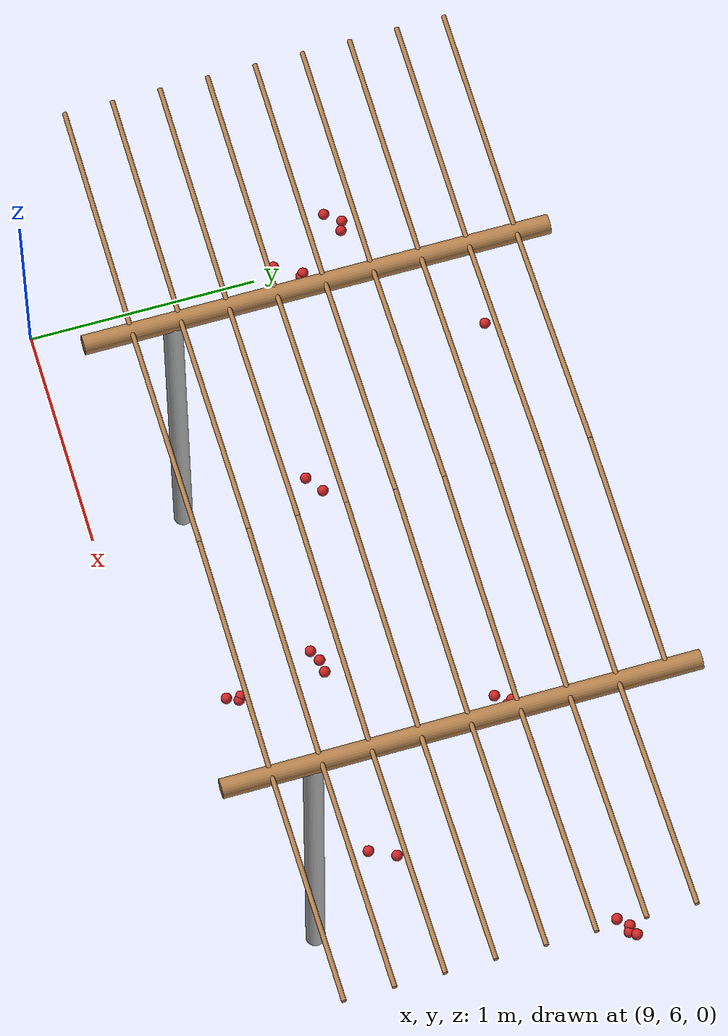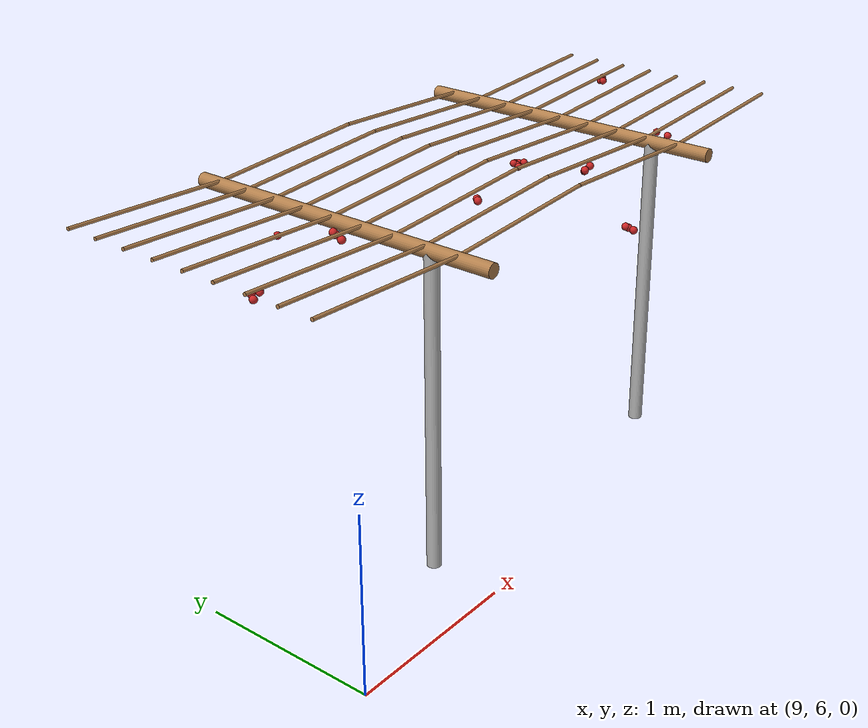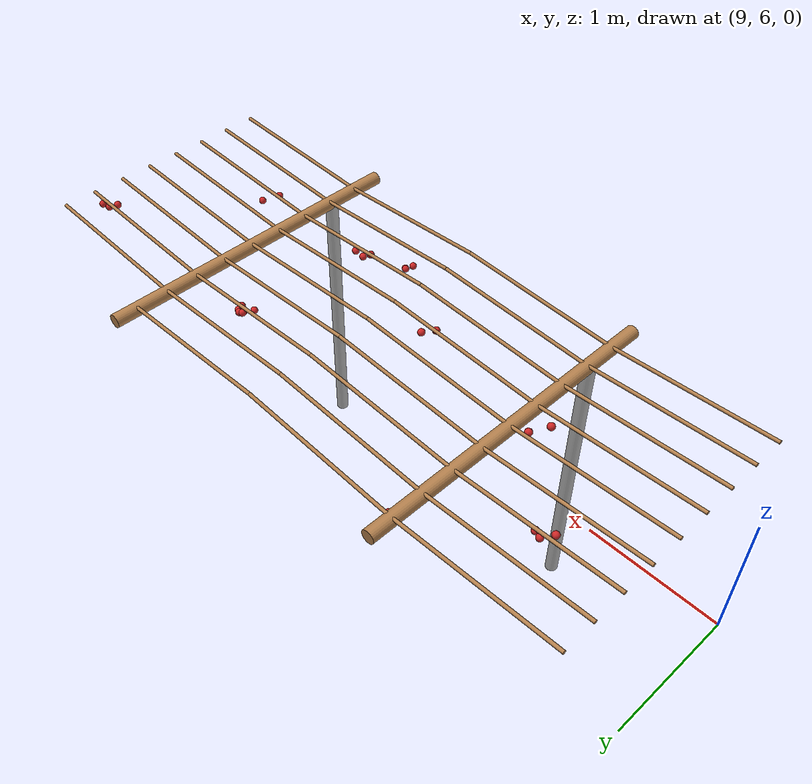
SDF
<sdf version="1.4">
 <model name="pergola">
  <include><name>tree_53</name><pose>10.0 6.4 0 0 0 0</pose><uri>model://tree_trunk</uri></include>
  <include><name>tree_63</name><pose>12.0 6.4 0 0 0 0</pose><uri>model://tree_trunk</uri></include>
  <link name="baseBranch_53">
   <pose>10.0 7.0 1.8 1.5707963267948966 0 0</pose>
   <collision name="collision">
    <geometry><cylinder><radius>0.04</radius><length>1.94</length></cylinder></geometry>
   </collision>
   <visual name="visual">
    <geometry><cylinder><radius>0.04</radius><length>1.94</length></cylinder></geometry>
    <material><script><name>Gazebo/WoodFloor</name></script></material>
   </visual>
   <inertial>
    <mass>10</mass>
    <inertia>
     <ixx>3.140333333333333</ixx>
     <ixy>0.0</ixy>
     <ixz>0.0</ixz>
     <iyy>3.140333333333333</iyy>
     <iyz>0.0</iyz>
     <izz>0.008</izz>
    </inertia>
   </inertial>
  </link>
  <link name="baseBranch_63">
   <pose>12.0 7.0 1.8 1.5707963267948966 0 0</pose>
   <collision name="collision">
    <geometry><cylinder><radius>0.04</radius><length>1.94</length></cylinder></geometry>
   </collision>
   <visual name="visual">
    <geometry><cylinder><radius>0.04</radius><length>1.94</length></cylinder></geometry>
    <material><script><name>Gazebo/WoodFloor</name></script></material>
   </visual>
   <inertial>
    <mass>10</mass>
    <inertia>
     <ixx>3.140333333333333</ixx>
     <ixy>0.0</ixy>
     <ixz>0.0</ixz>
     <iyy>3.140333333333333</iyy>
     <iyz>0.0</iyz>
     <izz>0.008</izz>
    </inertia>
   </inertial>
  </link>
  <link name="vine_863">
   <pose>9.5 6.23 1.85 0 -1.5208379310729538 0</pose>
   <collision name="collision">
    <geometry><cylinder><radius>0.01</radius><length>1.0012492197250393</length></cylinder></geometry>
   </collision>
   <visual name="visual">
    <geometry><cylinder><radius>0.01</radius><length>1.0012492197250393</length></cylinder></geometry>
    <material><script><name>Gazebo/WoodFloor</name></script></material>
   </visual>
   <inertial>
    <mass>5</mass>
    <inertia>
     <ixx>0.41783333333333345</ixx>
     <ixy>0.0</ixy>
     <ixz>0.0</ixz>
     <iyy>0.41783333333333345</iyy>
     <iyz>0.0</iyz>
     <izz>0.00025</izz>
    </inertia>
   </inertial>
  </link>
  <link name="vine_865">
   <pose>9.5 6.430000000000001 1.85 0 -1.5208379310729538 0</pose>
   <collision name="collision">
    <geometry><cylinder><radius>0.01</radius><length>1.0012492197250393</length></cylinder></geometry>
   </collision>
   <visual name="visual">
    <geometry><cylinder><radius>0.01</radius><length>1.0012492197250393</length></cylinder></geometry>
    <material><script><name>Gazebo/WoodFloor</name></script></material>
   </visual>
   <inertial>
    <mass>5</mass>
    <inertia>
     <ixx>0.41783333333333345</ixx>
     <ixy>0.0</ixy>
     <ixz>0.0</ixz>
     <iyy>0.41783333333333345</iyy>
     <iyz>0.0</iyz>
     <izz>0.00025</izz>
    </inertia>
   </inertial>
  </link>
  <link name="vine_867">
   <pose>9.5 6.630000000000001 1.85 0 -1.5208379310729538 0</pose>
   <collision name="collision">
    <geometry><cylinder><radius>0.01</radius><length>1.0012492197250393</length></cylinder></geometry>
   </collision>
   <visual name="visual">
    <geometry><cylinder><radius>0.01</radius><length>1.0012492197250393</length></cylinder></geometry>
    <material><script><name>Gazebo/WoodFloor</name></script></material>
   </visual>
   <inertial>
    <mass>5</mass>
    <inertia>
     <ixx>0.41783333333333345</ixx>
     <ixy>0.0</ixy>
     <ixz>0.0</ixz>
     <iyy>0.41783333333333345</iyy>
     <iyz>0.0</iyz>
     <izz>0.00025</izz>
    </inertia>
   </inertial>
  </link>
  <link name="vine_869">
   <pose>9.5 6.830000000000001 1.85 0 -1.5208379310729538 0</pose>
   <collision name="collision">
    <geometry><cylinder><radius>0.01</radius><length>1.0012492197250393</length></cylinder></geometry>
   </collision>
   <visual name="visual">
    <geometry><cylinder><radius>0.01</radius><length>1.0012492197250393</length></cylinder></geometry>
    <material><script><name>Gazebo/WoodFloor</name></script></material>
   </visual>
   <inertial>
    <mass>5</mass>
    <inertia>
     <ixx>0.41783333333333345</ixx>
     <ixy>0.0</ixy>
     <ixz>0.0</ixz>
     <iyy>0.41783333333333345</iyy>
     <iyz>0.0</iyz>
     <izz>0.00025</izz>
    </inertia>
   </inertial>
  </link>
  <link name="vine_871">
   <pose>9.5 7.03 1.85 0 -1.5208379310729538 0</pose>
   <collision name="collision">
    <geometry><cylinder><radius>0.01</radius><length>1.0012492197250393</length></cylinder></geometry>
   </collision>
   <visual name="visual">
    <geometry><cylinder><radius>0.01</radius><length>1.0012492197250393</length></cylinder></geometry>
    <material><script><name>Gazebo/WoodFloor</name></script></material>
   </visual>
   <inertial>
    <mass>5</mass>
    <inertia>
     <ixx>0.41783333333333345</ixx>
     <ixy>0.0</ixy>
     <ixz>0.0</ixz>
     <iyy>0.41783333333333345</iyy>
     <iyz>0.0</iyz>
     <izz>0.00025</izz>
    </inertia>
   </inertial>
  </link>
  <link name="vine_873">
   <pose>9.5 7.23 1.85 0 -1.5208379310729538 0</pose>
   <collision name="collision">
    <geometry><cylinder><radius>0.01</radius><length>1.0012492197250393</length></cylinder></geometry>
   </collision>
   <visual name="visual">
    <geometry><cylinder><radius>0.01</radius><length>1.0012492197250393</length></cylinder></geometry>
    <material><script><name>Gazebo/WoodFloor</name></script></material>
   </visual>
   <inertial>
    <mass>5</mass>
    <inertia>
     <ixx>0.41783333333333345</ixx>
     <ixy>0.0</ixy>
     <ixz>0.0</ixz>
     <iyy>0.41783333333333345</iyy>
     <iyz>0.0</iyz>
     <izz>0.00025</izz>
    </inertia>
   </inertial>
  </link>
  <link name="vine_875">
   <pose>9.5 7.430000000000001 1.85 0 -1.5208379310729538 0</pose>
   <collision name="collision">
    <geometry><cylinder><radius>0.01</radius><length>1.0012492197250393</length></cylinder></geometry>
   </collision>
   <visual name="visual">
    <geometry><cylinder><radius>0.01</radius><length>1.0012492197250393</length></cylinder></geometry>
    <material><script><name>Gazebo/WoodFloor</name></script></material>
   </visual>
   <inertial>
    <mass>5</mass>
    <inertia>
     <ixx>0.41783333333333345</ixx>
     <ixy>0.0</ixy>
     <ixz>0.0</ixz>
     <iyy>0.41783333333333345</iyy>
     <iyz>0.0</iyz>
     <izz>0.00025</izz>
    </inertia>
   </inertial>
  </link>
  <link name="vine_877">
   <pose>9.5 7.630000000000001 1.85 0 -1.5208379310729538 0</pose>
   <collision name="collision">
    <geometry><cylinder><radius>0.01</radius><length>1.0012492197250393</length></cylinder></geometry>
   </collision>
   <visual name="visual">
    <geometry><cylinder><radius>0.01</radius><length>1.0012492197250393</length></cylinder></geometry>
    <material><script><name>Gazebo/WoodFloor</name></script></material>
   </visual>
   <inertial>
    <mass>5</mass>
    <inertia>
     <ixx>0.41783333333333345</ixx>
     <ixy>0.0</ixy>
     <ixz>0.0</ixz>
     <iyy>0.41783333333333345</iyy>
     <iyz>0.0</iyz>
     <izz>0.00025</izz>
    </inertia>
   </inertial>
  </link>
  <link name="vine_879">
   <pose>9.5 7.830000000000001 1.85 0 -1.5208379310729538 0</pose>
   <collision name="collision">
    <geometry><cylinder><radius>0.01</radius><length>1.0012492197250393</length></cylinder></geometry>
   </collision>
   <visual name="visual">
    <geometry><cylinder><radius>0.01</radius><length>1.0012492197250393</length></cylinder></geometry>
    <material><script><name>Gazebo/WoodFloor</name></script></material>
   </visual>
   <inertial>
    <mass>5</mass>
    <inertia>
     <ixx>0.41783333333333345</ixx>
     <ixy>0.0</ixy>
     <ixz>0.0</ixz>
     <iyy>0.41783333333333345</iyy>
     <iyz>0.0</iyz>
     <izz>0.00025</izz>
    </inertia>
   </inertial>
  </link>
  <link name="vine_1062">
   <pose>10.5 6.23 1.85 0 1.5208379310729538 0</pose>
   <collision name="collision">
    <geometry><cylinder><radius>0.01</radius><length>1.0012492197250393</length></cylinder></geometry>
   </collision>
   <visual name="visual">
    <geometry><cylinder><radius>0.01</radius><length>1.0012492197250393</length></cylinder></geometry>
    <material><script><name>Gazebo/WoodFloor</name></script></material>
   </visual>
   <inertial>
    <mass>5</mass>
    <inertia>
     <ixx>0.41783333333333345</ixx>
     <ixy>0.0</ixy>
     <ixz>0.0</ixz>
     <iyy>0.41783333333333345</iyy>
     <iyz>0.0</iyz>
     <izz>0.00025</izz>
    </inertia>
   </inertial>
  </link>
  <link name="vine_1063">
   <pose>11.5 6.23 1.85 0 -1.5208379310729538 0</pose>
   <collision name="collision">
    <geometry><cylinder><radius>0.01</radius><length>1.0012492197250393</length></cylinder></geometry>
   </collision>
   <visual name="visual">
    <geometry><cylinder><radius>0.01</radius><length>1.0012492197250393</length></cylinder></geometry>
    <material><script><name>Gazebo/WoodFloor</name></script></material>
   </visual>
   <inertial>
    <mass>5</mass>
    <inertia>
     <ixx>0.41783333333333345</ixx>
     <ixy>0.0</ixy>
     <ixz>0.0</ixz>
     <iyy>0.41783333333333345</iyy>
     <iyz>0.0</iyz>
     <izz>0.00025</izz>
    </inertia>
   </inertial>
  </link>
  <link name="vine_1064">
   <pose>10.5 6.430000000000001 1.85 0 1.5208379310729538 0</pose>
   <collision name="collision">
    <geometry><cylinder><radius>0.01</radius><length>1.0012492197250393</length></cylinder></geometry>
   </collision>
   <visual name="visual">
    <geometry><cylinder><radius>0.01</radius><length>1.0012492197250393</length></cylinder></geometry>
    <material><script><name>Gazebo/WoodFloor</name></script></material>
   </visual>
   <inertial>
    <mass>5</mass>
    <inertia>
     <ixx>0.41783333333333345</ixx>
     <ixy>0.0</ixy>
     <ixz>0.0</ixz>
     <iyy>0.41783333333333345</iyy>
     <iyz>0.0</iyz>
     <izz>0.00025</izz>
    </inertia>
   </inertial>
  </link>
  <link name="vine_1065">
   <pose>11.5 6.430000000000001 1.85 0 -1.5208379310729538 0</pose>
   <collision name="collision">
    <geometry><cylinder><radius>0.01</radius><length>1.0012492197250393</length></cylinder></geometry>
   </collision>
   <visual name="visual">
    <geometry><cylinder><radius>0.01</radius><length>1.0012492197250393</length></cylinder></geometry>
    <material><script><name>Gazebo/WoodFloor</name></script></material>
   </visual>
   <inertial>
    <mass>5</mass>
    <inertia>
     <ixx>0.41783333333333345</ixx>
     <ixy>0.0</ixy>
     <ixz>0.0</ixz>
     <iyy>0.41783333333333345</iyy>
     <iyz>0.0</iyz>
     <izz>0.00025</izz>
    </inertia>
   </inertial>
  </link>
  <link name="vine_1066">
   <pose>10.5 6.630000000000001 1.85 0 1.5208379310729538 0</pose>
   <collision name="collision">
    <geometry><cylinder><radius>0.01</radius><length>1.0012492197250393</length></cylinder></geometry>
   </collision>
   <visual name="visual">
    <geometry><cylinder><radius>0.01</radius><length>1.0012492197250393</length></cylinder></geometry>
    <material><script><name>Gazebo/WoodFloor</name></script></material>
   </visual>
   <inertial>
    <mass>5</mass>
    <inertia>
     <ixx>0.41783333333333345</ixx>
     <ixy>0.0</ixy>
     <ixz>0.0</ixz>
     <iyy>0.41783333333333345</iyy>
     <iyz>0.0</iyz>
     <izz>0.00025</izz>
    </inertia>
   </inertial>
  </link>
  <link name="vine_1067">
   <pose>11.5 6.630000000000001 1.85 0 -1.5208379310729538 0</pose>
   <collision name="collision">
    <geometry><cylinder><radius>0.01</radius><length>1.0012492197250393</length></cylinder></geometry>
   </collision>
   <visual name="visual">
    <geometry><cylinder><radius>0.01</radius><length>1.0012492197250393</length></cylinder></geometry>
    <material><script><name>Gazebo/WoodFloor</name></script></material>
   </visual>
   <inertial>
    <mass>5</mass>
    <inertia>
     <ixx>0.41783333333333345</ixx>
     <ixy>0.0</ixy>
     <ixz>0.0</ixz>
     <iyy>0.41783333333333345</iyy>
     <iyz>0.0</iyz>
     <izz>0.00025</izz>
    </inertia>
   </inertial>
  </link>
  <link name="vine_1068">
   <pose>10.5 6.830000000000001 1.85 0 1.5208379310729538 0</pose>
   <collision name="collision">
    <geometry><cylinder><radius>0.01</radius><length>1.0012492197250393</length></cylinder></geometry>
   </collision>
   <visual name="visual">
    <geometry><cylinder><radius>0.01</radius><length>1.0012492197250393</length></cylinder></geometry>
    <material><script><name>Gazebo/WoodFloor</name></script></material>
   </visual>
   <inertial>
    <mass>5</mass>
    <inertia>
     <ixx>0.41783333333333345</ixx>
     <ixy>0.0</ixy>
     <ixz>0.0</ixz>
     <iyy>0.41783333333333345</iyy>
     <iyz>0.0</iyz>
     <izz>0.00025</izz>
    </inertia>
   </inertial>
  </link>
  <link name="vine_1069">
   <pose>11.5 6.830000000000001 1.85 0 -1.5208379310729538 0</pose>
   <collision name="collision">
    <geometry><cylinder><radius>0.01</radius><length>1.0012492197250393</length></cylinder></geometry>
   </collision>
   <visual name="visual">
    <geometry><cylinder><radius>0.01</radius><length>1.0012492197250393</length></cylinder></geometry>
    <material><script><name>Gazebo/WoodFloor</name></script></material>
   </visual>
   <inertial>
    <mass>5</mass>
    <inertia>
     <ixx>0.41783333333333345</ixx>
     <ixy>0.0</ixy>
     <ixz>0.0</ixz>
     <iyy>0.41783333333333345</iyy>
     <iyz>0.0</iyz>
     <izz>0.00025</izz>
    </inertia>
   </inertial>
  </link>
  <link name="vine_1070">
   <pose>10.5 7.03 1.85 0 1.5208379310729538 0</pose>
   <collision name="collision">
    <geometry><cylinder><radius>0.01</radius><length>1.0012492197250393</length></cylinder></geometry>
   </collision>
   <visual name="visual">
    <geometry><cylinder><radius>0.01</radius><length>1.0012492197250393</length></cylinder></geometry>
    <material><script><name>Gazebo/WoodFloor</name></script></material>
   </visual>
   <inertial>
    <mass>5</mass>
    <inertia>
     <ixx>0.41783333333333345</ixx>
     <ixy>0.0</ixy>
     <ixz>0.0</ixz>
     <iyy>0.41783333333333345</iyy>
     <iyz>0.0</iyz>
     <izz>0.00025</izz>
    </inertia>
   </inertial>
  </link>
  <link name="vine_1071">
   <pose>11.5 7.03 1.85 0 -1.5208379310729538 0</pose>
   <collision name="collision">
    <geometry><cylinder><radius>0.01</radius><length>1.0012492197250393</length></cylinder></geometry>
   </collision>
   <visual name="visual">
    <geometry><cylinder><radius>0.01</radius><length>1.0012492197250393</length></cylinder></geometry>
    <material><script><name>Gazebo/WoodFloor</name></script></material>
   </visual>
   <inertial>
    <mass>5</mass>
    <inertia>
     <ixx>0.41783333333333345</ixx>
     <ixy>0.0</ixy>
     <ixz>0.0</ixz>
     <iyy>0.41783333333333345</iyy>
     <iyz>0.0</iyz>
     <izz>0.00025</izz>
    </inertia>
   </inertial>
  </link>
  <link name="vine_1072">
   <pose>10.5 7.23 1.85 0 1.5208379310729538 0</pose>
   <collision name="collision">
    <geometry><cylinder><radius>0.01</radius><length>1.0012492197250393</length></cylinder></geometry>
   </collision>
   <visual name="visual">
    <geometry><cylinder><radius>0.01</radius><length>1.0012492197250393</length></cylinder></geometry>
    <material><script><name>Gazebo/WoodFloor</name></script></material>
   </visual>
   <inertial>
    <mass>5</mass>
    <inertia>
     <ixx>0.41783333333333345</ixx>
     <ixy>0.0</ixy>
     <ixz>0.0</ixz>
     <iyy>0.41783333333333345</iyy>
     <iyz>0.0</iyz>
     <izz>0.00025</izz>
    </inertia>
   </inertial>
  </link>
  <link name="vine_1073">
   <pose>11.5 7.23 1.85 0 -1.5208379310729538 0</pose>
   <collision name="collision">
    <geometry><cylinder><radius>0.01</radius><length>1.0012492197250393</length></cylinder></geometry>
   </collision>
   <visual name="visual">
    <geometry><cylinder><radius>0.01</radius><length>1.0012492197250393</length></cylinder></geometry>
    <material><script><name>Gazebo/WoodFloor</name></script></material>
   </visual>
   <inertial>
    <mass>5</mass>
    <inertia>
     <ixx>0.41783333333333345</ixx>
     <ixy>0.0</ixy>
     <ixz>0.0</ixz>
     <iyy>0.41783333333333345</iyy>
     <iyz>0.0</iyz>
     <izz>0.00025</izz>
    </inertia>
   </inertial>
  </link>
  <link name="vine_1074">
   <pose>10.5 7.430000000000001 1.85 0 1.5208379310729538 0</pose>
   <collision name="collision">
    <geometry><cylinder><radius>0.01</radius><length>1.0012492197250393</length></cylinder></geometry>
   </collision>
   <visual name="visual">
    <geometry><cylinder><radius>0.01</radius><length>1.0012492197250393</length></cylinder></geometry>
    <material><script><name>Gazebo/WoodFloor</name></script></material>
   </visual>
   <inertial>
    <mass>5</mass>
    <inertia>
     <ixx>0.41783333333333345</ixx>
     <ixy>0.0</ixy>
     <ixz>0.0</ixz>
     <iyy>0.41783333333333345</iyy>
     <iyz>0.0</iyz>
     <izz>0.00025</izz>
    </inertia>
   </inertial>
  </link>
  <link name="vine_1075">
   <pose>11.5 7.430000000000001 1.85 0 -1.5208379310729538 0</pose>
   <collision name="collision">
    <geometry><cylinder><radius>0.01</radius><length>1.0012492197250393</length></cylinder></geometry>
   </collision>
   <visual name="visual">
    <geometry><cylinder><radius>0.01</radius><length>1.0012492197250393</length></cylinder></geometry>
    <material><script><name>Gazebo/WoodFloor</name></script></material>
   </visual>
   <inertial>
    <mass>5</mass>
    <inertia>
     <ixx>0.41783333333333345</ixx>
     <ixy>0.0</ixy>
     <ixz>0.0</ixz>
     <iyy>0.41783333333333345</iyy>
     <iyz>0.0</iyz>
     <izz>0.00025</izz>
    </inertia>
   </inertial>
  </link>
  <link name="vine_1076">
   <pose>10.5 7.630000000000001 1.85 0 1.5208379310729538 0</pose>
   <collision name="collision">
    <geometry><cylinder><radius>0.01</radius><length>1.0012492197250393</length></cylinder></geometry>
   </collision>
   <visual name="visual">
    <geometry><cylinder><radius>0.01</radius><length>1.0012492197250393</length></cylinder></geometry>
    <material><script><name>Gazebo/WoodFloor</name></script></material>
   </visual>
   <inertial>
    <mass>5</mass>
    <inertia>
     <ixx>0.41783333333333345</ixx>
     <ixy>0.0</ixy>
     <ixz>0.0</ixz>
     <iyy>0.41783333333333345</iyy>
     <iyz>0.0</iyz>
     <izz>0.00025</izz>
    </inertia>
   </inertial>
  </link>
  <link name="vine_1077">
   <pose>11.5 7.630000000000001 1.85 0 -1.5208379310729538 0</pose>
   <collision name="collision">
    <geometry><cylinder><radius>0.01</radius><length>1.0012492197250393</length></cylinder></geometry>
   </collision>
   <visual name="visual">
    <geometry><cylinder><radius>0.01</radius><length>1.0012492197250393</length></cylinder></geometry>
    <material><script><name>Gazebo/WoodFloor</name></script></material>
   </visual>
   <inertial>
    <mass>5</mass>
    <inertia>
     <ixx>0.41783333333333345</ixx>
     <ixy>0.0</ixy>
     <ixz>0.0</ixz>
     <iyy>0.41783333333333345</iyy>
     <iyz>0.0</iyz>
     <izz>0.00025</izz>
    </inertia>
   </inertial>
  </link>
  <link name="vine_1078">
   <pose>10.5 7.830000000000001 1.85 0 1.5208379310729538 0</pose>
   <collision name="collision">
    <geometry><cylinder><radius>0.01</radius><length>1.0012492197250393</length></cylinder></geometry>
   </collision>
   <visual name="visual">
    <geometry><cylinder><radius>0.01</radius><length>1.0012492197250393</length></cylinder></geometry>
    <material><script><name>Gazebo/WoodFloor</name></script></material>
   </visual>
   <inertial>
    <mass>5</mass>
    <inertia>
     <ixx>0.41783333333333345</ixx>
     <ixy>0.0</ixy>
     <ixz>0.0</ixz>
     <iyy>0.41783333333333345</iyy>
     <iyz>0.0</iyz>
     <izz>0.00025</izz>
    </inertia>
   </inertial>
  </link>
  <link name="vine_1079">
   <pose>11.5 7.830000000000001 1.85 0 -1.5208379310729538 0</pose>
   <collision name="collision">
    <geometry><cylinder><radius>0.01</radius><length>1.0012492197250393</length></cylinder></geometry>
   </collision>
   <visual name="visual">
    <geometry><cylinder><radius>0.01</radius><length>1.0012492197250393</length></cylinder></geometry>
    <material><script><name>Gazebo/WoodFloor</name></script></material>
   </visual>
   <inertial>
    <mass>5</mass>
    <inertia>
     <ixx>0.41783333333333345</ixx>
     <ixy>0.0</ixy>
     <ixz>0.0</ixz>
     <iyy>0.41783333333333345</iyy>
     <iyz>0.0</iyz>
     <izz>0.00025</izz>
    </inertia>
   </inertial>
  </link>
  <link name="vine_1262">
   <pose>12.5 6.23 1.85 0 1.5208379310729538 0</pose>
   <collision name="collision">
    <geometry><cylinder><radius>0.01</radius><length>1.0012492197250393</length></cylinder></geometry>
   </collision>
   <visual name="visual">
    <geometry><cylinder><radius>0.01</radius><length>1.0012492197250393</length></cylinder></geometry>
    <material><script><name>Gazebo/WoodFloor</name></script></material>
   </visual>
   <inertial>
    <mass>5</mass>
    <inertia>
     <ixx>0.41783333333333345</ixx>
     <ixy>0.0</ixy>
     <ixz>0.0</ixz>
     <iyy>0.41783333333333345</iyy>
     <iyz>0.0</iyz>
     <izz>0.00025</izz>
    </inertia>
   </inertial>
  </link>
  <link name="vine_1264">
   <pose>12.5 6.430000000000001 1.85 0 1.5208379310729538 0</pose>
   <collision name="collision">
    <geometry><cylinder><radius>0.01</radius><length>1.0012492197250393</length></cylinder></geometry>
   </collision>
   <visual name="visual">
    <geometry><cylinder><radius>0.01</radius><length>1.0012492197250393</length></cylinder></geometry>
    <material><script><name>Gazebo/WoodFloor</name></script></material>
   </visual>
   <inertial>
    <mass>5</mass>
    <inertia>
     <ixx>0.41783333333333345</ixx>
     <ixy>0.0</ixy>
     <ixz>0.0</ixz>
     <iyy>0.41783333333333345</iyy>
     <iyz>0.0</iyz>
     <izz>0.00025</izz>
    </inertia>
   </inertial>
  </link>
  <link name="vine_1266">
   <pose>12.5 6.630000000000001 1.85 0 1.5208379310729538 0</pose>
   <collision name="collision">
    <geometry><cylinder><radius>0.01</radius><length>1.0012492197250393</length></cylinder></geometry>
   </collision>
   <visual name="visual">
    <geometry><cylinder><radius>0.01</radius><length>1.0012492197250393</length></cylinder></geometry>
    <material><script><name>Gazebo/WoodFloor</name></script></material>
   </visual>
   <inertial>
    <mass>5</mass>
    <inertia>
     <ixx>0.41783333333333345</ixx>
     <ixy>0.0</ixy>
     <ixz>0.0</ixz>
     <iyy>0.41783333333333345</iyy>
     <iyz>0.0</iyz>
     <izz>0.00025</izz>
    </inertia>
   </inertial>
  </link>
  <link name="vine_1268">
   <pose>12.5 6.830000000000001 1.85 0 1.5208379310729538 0</pose>
   <collision name="collision">
    <geometry><cylinder><radius>0.01</radius><length>1.0012492197250393</length></cylinder></geometry>
   </collision>
   <visual name="visual">
    <geometry><cylinder><radius>0.01</radius><length>1.0012492197250393</length></cylinder></geometry>
    <material><script><name>Gazebo/WoodFloor</name></script></material>
   </visual>
   <inertial>
    <mass>5</mass>
    <inertia>
     <ixx>0.41783333333333345</ixx>
     <ixy>0.0</ixy>
     <ixz>0.0</ixz>
     <iyy>0.41783333333333345</iyy>
     <iyz>0.0</iyz>
     <izz>0.00025</izz>
    </inertia>
   </inertial>
  </link>
  <link name="vine_1270">
   <pose>12.5 7.03 1.85 0 1.5208379310729538 0</pose>
   <collision name="collision">
    <geometry><cylinder><radius>0.01</radius><length>1.0012492197250393</length></cylinder></geometry>
   </collision>
   <visual name="visual">
    <geometry><cylinder><radius>0.01</radius><length>1.0012492197250393</length></cylinder></geometry>
    <material><script><name>Gazebo/WoodFloor</name></script></material>
   </visual>
   <inertial>
    <mass>5</mass>
    <inertia>
     <ixx>0.41783333333333345</ixx>
     <ixy>0.0</ixy>
     <ixz>0.0</ixz>
     <iyy>0.41783333333333345</iyy>
     <iyz>0.0</iyz>
     <izz>0.00025</izz>
    </inertia>
   </inertial>
  </link>
  <link name="vine_1272">
   <pose>12.5 7.23 1.85 0 1.5208379310729538 0</pose>
   <collision name="collision">
    <geometry><cylinder><radius>0.01</radius><length>1.0012492197250393</length></cylinder></geometry>
   </collision>
   <visual name="visual">
    <geometry><cylinder><radius>0.01</radius><length>1.0012492197250393</length></cylinder></geometry>
    <material><script><name>Gazebo/WoodFloor</name></script></material>
   </visual>
   <inertial>
    <mass>5</mass>
    <inertia>
     <ixx>0.41783333333333345</ixx>
     <ixy>0.0</ixy>
     <ixz>0.0</ixz>
     <iyy>0.41783333333333345</iyy>
     <iyz>0.0</iyz>
     <izz>0.00025</izz>
    </inertia>
   </inertial>
  </link>
  <link name="vine_1274">
   <pose>12.5 7.430000000000001 1.85 0 1.5208379310729538 0</pose>
   <collision name="collision">
    <geometry><cylinder><radius>0.01</radius><length>1.0012492197250393</length></cylinder></geometry>
   </collision>
   <visual name="visual">
    <geometry><cylinder><radius>0.01</radius><length>1.0012492197250393</length></cylinder></geometry>
    <material><script><name>Gazebo/WoodFloor</name></script></material>
   </visual>
   <inertial>
    <mass>5</mass>
    <inertia>
     <ixx>0.41783333333333345</ixx>
     <ixy>0.0</ixy>
     <ixz>0.0</ixz>
     <iyy>0.41783333333333345</iyy>
     <iyz>0.0</iyz>
     <izz>0.00025</izz>
    </inertia>
   </inertial>
  </link>
  <link name="vine_1276">
   <pose>12.5 7.630000000000001 1.85 0 1.5208379310729538 0</pose>
   <collision name="collision">
    <geometry><cylinder><radius>0.01</radius><length>1.0012492197250393</length></cylinder></geometry>
   </collision>
   <visual name="visual">
    <geometry><cylinder><radius>0.01</radius><length>1.0012492197250393</length></cylinder></geometry>
    <material><script><name>Gazebo/WoodFloor</name></script></material>
   </visual>
   <inertial>
    <mass>5</mass>
    <inertia>
     <ixx>0.41783333333333345</ixx>
     <ixy>0.0</ixy>
     <ixz>0.0</ixz>
     <iyy>0.41783333333333345</iyy>
     <iyz>0.0</iyz>
     <izz>0.00025</izz>
    </inertia>
   </inertial>
  </link>
  <link name="fruit_65">
   <pose>12.93283441410657 7.335465173879388 1.7686167074419668 0 0 0</pose>
   <collision name="fruit_collision_65"><geometry><sphere><radius>0.022</radius></sphere></geometry></collision>
   <visual name="visual">
    <geometry><sphere><radius>0.022</radius></sphere></geometry>
    <material><script><name>Gazebo/Red</name></script></material>
   </visual>
   <inertial>
    <mass>0.05</mass>
    <inertia>
     <ixx>9.679999999999999e-06</ixx>
     <ixy>0.0</ixy>
     <ixz>0.0</ixz>
     <iyy>9.679999999999999e-06</iyy>
     <iyz>0.0</iyz>
     <izz>9.679999999999999e-06</izz>
    </inertia>
   </inertial>
   <sensor name="fruit_contact_65" type="contact">
    <contact><collision>fruit_collision_65</collision></contact>
   </sensor>
  </link>
  <link name="fruit_167">
   <pose>10.785764676375722 6.7240294795304845 1.7368510576433716 0 0 0</pose>
   <collision name="fruit_collision_167"><geometry><sphere><radius>0.022</radius></sphere></geometry></collision>
   <visual name="visual">
    <geometry><sphere><radius>0.022</radius></sphere></geometry>
    <material><script><name>Gazebo/Red</name></script></material>
   </visual>
   <inertial>
    <mass>0.05</mass>
    <inertia>
     <ixx>9.679999999999999e-06</ixx>
     <ixy>0.0</ixy>
     <ixz>0.0</ixz>
     <iyy>9.679999999999999e-06</iyy>
     <iyz>0.0</iyz>
     <izz>9.679999999999999e-06</izz>
    </inertia>
   </inertial>
   <sensor name="fruit_contact_167" type="contact">
    <contact><collision>fruit_collision_167</collision></contact>
   </sensor>
  </link>
  <link name="fruit_245">
   <pose>9.544308296226887 7.160483855744983 1.4938439278566509 0 0 0</pose>
   <collision name="fruit_collision_245"><geometry><sphere><radius>0.022</radius></sphere></geometry></collision>
   <visual name="visual">
    <geometry><sphere><radius>0.022</radius></sphere></geometry>
    <material><script><name>Gazebo/Red</name></script></material>
   </visual>
   <inertial>
    <mass>0.05</mass>
    <inertia>
     <ixx>9.679999999999999e-06</ixx>
     <ixy>0.0</ixy>
     <ixz>0.0</ixz>
     <iyy>9.679999999999999e-06</iyy>
     <iyz>0.0</iyz>
     <izz>9.679999999999999e-06</izz>
    </inertia>
   </inertial>
   <sensor name="fruit_contact_245" type="contact">
    <contact><collision>fruit_collision_245</collision></contact>
   </sensor>
  </link>
  <link name="fruit_254">
   <pose>9.868143605283372 6.8572063991666505 1.7835887205859005 0 0 0</pose>
   <collision name="fruit_collision_254"><geometry><sphere><radius>0.022</radius></sphere></geometry></collision>
   <visual name="visual">
    <geometry><sphere><radius>0.022</radius></sphere></geometry>
    <material><script><name>Gazebo/Red</name></script></material>
   </visual>
   <inertial>
    <mass>0.05</mass>
    <inertia>
     <ixx>9.679999999999999e-06</ixx>
     <ixy>0.0</ixy>
     <ixz>0.0</ixz>
     <iyy>9.679999999999999e-06</iyy>
     <iyz>0.0</iyz>
     <izz>9.679999999999999e-06</izz>
    </inertia>
   </inertial>
   <sensor name="fruit_contact_254" type="contact">
    <contact><collision>fruit_collision_254</collision></contact>
   </sensor>
  </link>
  <link name="fruit_264">
   <pose>11.80851706935725 7.1951924175785535 1.5271991780758039 0 0 0</pose>
   <collision name="fruit_collision_264"><geometry><sphere><radius>0.022</radius></sphere></geometry></collision>
   <visual name="visual">
    <geometry><sphere><radius>0.022</radius></sphere></geometry>
    <material><script><name>Gazebo/Red</name></script></material>
   </visual>
   <inertial>
    <mass>0.05</mass>
    <inertia>
     <ixx>9.679999999999999e-06</ixx>
     <ixy>0.0</ixy>
     <ixz>0.0</ixz>
     <iyy>9.679999999999999e-06</iyy>
     <iyz>0.0</iyz>
     <izz>9.679999999999999e-06</izz>
    </inertia>
   </inertial>
   <sensor name="fruit_contact_264" type="contact">
    <contact><collision>fruit_collision_264</collision></contact>
   </sensor>
  </link>
  <link name="fruit_277">
   <pose>12.374711919719683 6.511741633759813 1.7144812652034052 0 0 0</pose>
   <collision name="fruit_collision_277"><geometry><sphere><radius>0.022</radius></sphere></geometry></collision>
   <visual name="visual">
    <geometry><sphere><radius>0.022</radius></sphere></geometry>
    <material><script><name>Gazebo/Red</name></script></material>
   </visual>
   <inertial>
    <mass>0.05</mass>
    <inertia>
     <ixx>9.679999999999999e-06</ixx>
     <ixy>0.0</ixy>
     <ixz>0.0</ixz>
     <iyy>9.679999999999999e-06</iyy>
     <iyz>0.0</iyz>
     <izz>9.679999999999999e-06</izz>
    </inertia>
   </inertial>
   <sensor name="fruit_contact_277" type="contact">
    <contact><collision>fruit_collision_277</collision></contact>
   </sensor>
  </link>
  <link name="fruit_303">
   <pose>10.206706202976523 7.646366882530018 1.490524528710463 0 0 0</pose>
   <collision name="fruit_collision_303"><geometry><sphere><radius>0.022</radius></sphere></geometry></collision>
   <visual name="visual">
    <geometry><sphere><radius>0.022</radius></sphere></geometry>
    <material><script><name>Gazebo/Red</name></script></material>
   </visual>
   <inertial>
    <mass>0.05</mass>
    <inertia>
     <ixx>9.679999999999999e-06</ixx>
     <ixy>0.0</ixy>
     <ixz>0.0</ixz>
     <iyy>9.679999999999999e-06</iyy>
     <iyz>0.0</iyz>
     <izz>9.679999999999999e-06</izz>
    </inertia>
   </inertial>
   <sensor name="fruit_contact_303" type="contact">
    <contact><collision>fruit_collision_303</collision></contact>
   </sensor>
  </link>
  <link name="fruit_315">
   <pose>11.51348169651984 6.530887381680547 1.741242183810595 0 0 0</pose>
   <collision name="fruit_collision_315"><geometry><sphere><radius>0.022</radius></sphere></geometry></collision>
   <visual name="visual">
    <geometry><sphere><radius>0.022</radius></sphere></geometry>
    <material><script><name>Gazebo/Red</name></script></material>
   </visual>
   <inertial>
    <mass>0.05</mass>
    <inertia>
     <ixx>9.679999999999999e-06</ixx>
     <ixy>0.0</ixy>
     <ixz>0.0</ixz>
     <iyy>9.679999999999999e-06</iyy>
     <iyz>0.0</iyz>
     <izz>9.679999999999999e-06</izz>
    </inertia>
   </inertial>
   <sensor name="fruit_contact_315" type="contact">
    <contact><collision>fruit_collision_315</collision></contact>
   </sensor>
  </link>
  <link name="fruit_398">
   <pose>9.930737297979576 6.953577306776451 1.7659898954193496 0 0 0</pose>
   <collision name="fruit_collision_398"><geometry><sphere><radius>0.022</radius></sphere></geometry></collision>
   <visual name="visual">
    <geometry><sphere><radius>0.022</radius></sphere></geometry>
    <material><script><name>Gazebo/Red</name></script></material>
   </visual>
   <inertial>
    <mass>0.05</mass>
    <inertia>
     <ixx>9.679999999999999e-06</ixx>
     <ixy>0.0</ixy>
     <ixz>0.0</ixz>
     <iyy>9.679999999999999e-06</iyy>
     <iyz>0.0</iyz>
     <izz>9.679999999999999e-06</izz>
    </inertia>
   </inertial>
   <sensor name="fruit_contact_398" type="contact">
    <contact><collision>fruit_collision_398</collision></contact>
   </sensor>
  </link>
  <link name="fruit_454">
   <pose>11.885433154016988 7.2521970469684165 1.5182462199739508 0 0 0</pose>
   <collision name="fruit_collision_454"><geometry><sphere><radius>0.022</radius></sphere></geometry></collision>
   <visual name="visual">
    <geometry><sphere><radius>0.022</radius></sphere></geometry>
    <material><script><name>Gazebo/Red</name></script></material>
   </visual>
   <inertial>
    <mass>0.05</mass>
    <inertia>
     <ixx>9.679999999999999e-06</ixx>
     <ixy>0.0</ixy>
     <ixz>0.0</ixz>
     <iyy>9.679999999999999e-06</iyy>
     <iyz>0.0</iyz>
     <izz>9.679999999999999e-06</izz>
    </inertia>
   </inertial>
   <sensor name="fruit_contact_454" type="contact">
    <contact><collision>fruit_collision_454</collision></contact>
   </sensor>
  </link>
  <link name="fruit_492">
   <pose>11.498764938259217 6.18929710142006 1.4732199940304669 0 0 0</pose>
   <collision name="fruit_collision_492"><geometry><sphere><radius>0.022</radius></sphere></geometry></collision>
   <visual name="visual">
    <geometry><sphere><radius>0.022</radius></sphere></geometry>
    <material><script><name>Gazebo/Red</name></script></material>
   </visual>
   <inertial>
    <mass>0.05</mass>
    <inertia>
     <ixx>9.679999999999999e-06</ixx>
     <ixy>0.0</ixy>
     <ixz>0.0</ixz>
     <iyy>9.679999999999999e-06</iyy>
     <iyz>0.0</iyz>
     <izz>9.679999999999999e-06</izz>
    </inertia>
   </inertial>
   <sensor name="fruit_contact_492" type="contact">
    <contact><collision>fruit_collision_492</collision></contact>
   </sensor>
  </link>
  <link name="fruit_515">
   <pose>9.591690540046589 7.223544221519388 1.4874971531904524 0 0 0</pose>
   <collision name="fruit_collision_515"><geometry><sphere><radius>0.022</radius></sphere></geometry></collision>
   <visual name="visual">
    <geometry><sphere><radius>0.022</radius></sphere></geometry>
    <material><script><name>Gazebo/Red</name></script></material>
   </visual>
   <inertial>
    <mass>0.05</mass>
    <inertia>
     <ixx>9.679999999999999e-06</ixx>
     <ixy>0.0</ixy>
     <ixz>0.0</ixz>
     <iyy>9.679999999999999e-06</iyy>
     <iyz>0.0</iyz>
     <izz>9.679999999999999e-06</izz>
    </inertia>
   </inertial>
   <sensor name="fruit_contact_515" type="contact">
    <contact><collision>fruit_collision_515</collision></contact>
   </sensor>
  </link>
  <link name="fruit_577">
   <pose>12.98975340289349 7.36844924987403 1.7493682612278976 0 0 0</pose>
   <collision name="fruit_collision_577"><geometry><sphere><radius>0.022</radius></sphere></geometry></collision>
   <visual name="visual">
    <geometry><sphere><radius>0.022</radius></sphere></geometry>
    <material><script><name>Gazebo/Red</name></script></material>
   </visual>
   <inertial>
    <mass>0.05</mass>
    <inertia>
     <ixx>9.679999999999999e-06</ixx>
     <ixy>0.0</ixy>
     <ixz>0.0</ixz>
     <iyy>9.679999999999999e-06</iyy>
     <iyz>0.0</iyz>
     <izz>9.679999999999999e-06</izz>
    </inertia>
   </inertial>
   <sensor name="fruit_contact_577" type="contact">
    <contact><collision>fruit_collision_577</collision></contact>
   </sensor>
  </link>
  <link name="fruit_638">
   <pose>11.841950582177748 7.2575261880338555 1.52559111157668 0 0 0</pose>
   <collision name="fruit_collision_638"><geometry><sphere><radius>0.022</radius></sphere></geometry></collision>
   <visual name="visual">
    <geometry><sphere><radius>0.022</radius></sphere></geometry>
    <material><script><name>Gazebo/Red</name></script></material>
   </visual>
   <inertial>
    <mass>0.05</mass>
    <inertia>
     <ixx>9.679999999999999e-06</ixx>
     <ixy>0.0</ixy>
     <ixz>0.0</ixz>
     <iyy>9.679999999999999e-06</iyy>
     <iyz>0.0</iyz>
     <izz>9.679999999999999e-06</izz>
    </inertia>
   </inertial>
   <sensor name="fruit_contact_638" type="contact">
    <contact><collision>fruit_collision_638</collision></contact>
   </sensor>
  </link>
  <link name="fruit_647">
   <pose>11.518984939907199 6.236218363220417 1.4705545663852801 0 0 0</pose>
   <collision name="fruit_collision_647"><geometry><sphere><radius>0.022</radius></sphere></geometry></collision>
   <visual name="visual">
    <geometry><sphere><radius>0.022</radius></sphere></geometry>
    <material><script><name>Gazebo/Red</name></script></material>
   </visual>
   <inertial>
    <mass>0.05</mass>
    <inertia>
     <ixx>9.679999999999999e-06</ixx>
     <ixy>0.0</ixy>
     <ixz>0.0</ixz>
     <iyy>9.679999999999999e-06</iyy>
     <iyz>0.0</iyz>
     <izz>9.679999999999999e-06</izz>
    </inertia>
   </inertial>
   <sensor name="fruit_contact_647" type="contact">
    <contact><collision>fruit_collision_647</collision></contact>
   </sensor>
  </link>
  <link name="fruit_708">
   <pose>10.84795508589215 6.776566220553868 1.716033606538904 0 0 0</pose>
   <collision name="fruit_collision_708"><geometry><sphere><radius>0.022</radius></sphere></geometry></collision>
   <visual name="visual">
    <geometry><sphere><radius>0.022</radius></sphere></geometry>
    <material><script><name>Gazebo/Red</name></script></material>
   </visual>
   <inertial>
    <mass>0.05</mass>
    <inertia>
     <ixx>9.679999999999999e-06</ixx>
     <ixy>0.0</ixy>
     <ixz>0.0</ixz>
     <iyy>9.679999999999999e-06</iyy>
     <iyz>0.0</iyz>
     <izz>9.679999999999999e-06</izz>
    </inertia>
   </inertial>
   <sensor name="fruit_contact_708" type="contact">
    <contact><collision>fruit_collision_708</collision></contact>
   </sensor>
  </link>
  <link name="fruit_731">
   <pose>11.50751381779274 6.2462173688033715 1.4775828520451737 0 0 0</pose>
   <collision name="fruit_collision_731"><geometry><sphere><radius>0.022</radius></sphere></geometry></collision>
   <visual name="visual">
    <geometry><sphere><radius>0.022</radius></sphere></geometry>
    <material><script><name>Gazebo/Red</name></script></material>
   </visual>
   <inertial>
    <mass>0.05</mass>
    <inertia>
     <ixx>9.679999999999999e-06</ixx>
     <ixy>0.0</ixy>
     <ixz>0.0</ixz>
     <iyy>9.679999999999999e-06</iyy>
     <iyz>0.0</iyz>
     <izz>9.679999999999999e-06</izz>
    </inertia>
   </inertial>
   <sensor name="fruit_contact_731" type="contact">
    <contact><collision>fruit_collision_731</collision></contact>
   </sensor>
  </link>
  <link name="fruit_740">
   <pose>9.924083522565674 6.9631516358455725 1.7777404334089457 0 0 0</pose>
   <collision name="fruit_collision_740"><geometry><sphere><radius>0.022</radius></sphere></geometry></collision>
   <visual name="visual">
    <geometry><sphere><radius>0.022</radius></sphere></geometry>
    <material><script><name>Gazebo/Red</name></script></material>
   </visual>
   <inertial>
    <mass>0.05</mass>
    <inertia>
     <ixx>9.679999999999999e-06</ixx>
     <ixy>0.0</ixy>
     <ixz>0.0</ixz>
     <iyy>9.679999999999999e-06</iyy>
     <iyz>0.0</iyz>
     <izz>9.679999999999999e-06</izz>
    </inertia>
   </inertial>
   <sensor name="fruit_contact_740" type="contact">
    <contact><collision>fruit_collision_740</collision></contact>
   </sensor>
  </link>
  <link name="fruit_779">
   <pose>11.89650026743446 7.21886904321374 1.5239966276435215 0 0 0</pose>
   <collision name="fruit_collision_779"><geometry><sphere><radius>0.022</radius></sphere></geometry></collision>
   <visual name="visual">
    <geometry><sphere><radius>0.022</radius></sphere></geometry>
    <material><script><name>Gazebo/Red</name></script></material>
   </visual>
   <inertial>
    <mass>0.05</mass>
    <inertia>
     <ixx>9.679999999999999e-06</ixx>
     <ixy>0.0</ixy>
     <ixz>0.0</ixz>
     <iyy>9.679999999999999e-06</iyy>
     <iyz>0.0</iyz>
     <izz>9.679999999999999e-06</izz>
    </inertia>
   </inertial>
   <sensor name="fruit_contact_779" type="contact">
    <contact><collision>fruit_collision_779</collision></contact>
   </sensor>
  </link>
  <link name="fruit_788">
   <pose>12.966940637214046 7.377015704085243 1.7556733708211913 0 0 0</pose>
   <collision name="fruit_collision_788"><geometry><sphere><radius>0.022</radius></sphere></geometry></collision>
   <visual name="visual">
    <geometry><sphere><radius>0.022</radius></sphere></geometry>
    <material><script><name>Gazebo/Red</name></script></material>
   </visual>
   <inertial>
    <mass>0.05</mass>
    <inertia>
     <ixx>9.679999999999999e-06</ixx>
     <ixy>0.0</ixy>
     <ixz>0.0</ixz>
     <iyy>9.679999999999999e-06</iyy>
     <iyz>0.0</iyz>
     <izz>9.679999999999999e-06</izz>
    </inertia>
   </inertial>
   <sensor name="fruit_contact_788" type="contact">
    <contact><collision>fruit_collision_788</collision></contact>
   </sensor>
  </link>
  <link name="fruit_790">
   <pose>11.610037373685437 6.560829955842036 1.7320839406388233 0 0 0</pose>
   <collision name="fruit_collision_790"><geometry><sphere><radius>0.022</radius></sphere></geometry></collision>
   <visual name="visual">
    <geometry><sphere><radius>0.022</radius></sphere></geometry>
    <material><script><name>Gazebo/Red</name></script></material>
   </visual>
   <inertial>
    <mass>0.05</mass>
    <inertia>
     <ixx>9.679999999999999e-06</ixx>
     <ixy>0.0</ixy>
     <ixz>0.0</ixz>
     <iyy>9.679999999999999e-06</iyy>
     <iyz>0.0</iyz>
     <izz>9.679999999999999e-06</izz>
    </inertia>
   </inertial>
   <sensor name="fruit_contact_790" type="contact">
    <contact><collision>fruit_collision_790</collision></contact>
   </sensor>
  </link>
  <link name="fruit_809">
   <pose>11.551011581169668 6.557159796087813 1.7192869978905807 0 0 0</pose>
   <collision name="fruit_collision_809"><geometry><sphere><radius>0.022</radius></sphere></geometry></collision>
   <visual name="visual">
    <geometry><sphere><radius>0.022</radius></sphere></geometry>
    <material><script><name>Gazebo/Red</name></script></material>
   </visual>
   <inertial>
    <mass>0.05</mass>
    <inertia>
     <ixx>9.679999999999999e-06</ixx>
     <ixy>0.0</ixy>
     <ixz>0.0</ixz>
     <iyy>9.679999999999999e-06</iyy>
     <iyz>0.0</iyz>
     <izz>9.679999999999999e-06</izz>
    </inertia>
   </inertial>
   <sensor name="fruit_contact_809" type="contact">
    <contact><collision>fruit_collision_809</collision></contact>
   </sensor>
  </link>
  <link name="fruit_816">
   <pose>12.419922227283553 6.6135497213969545 1.704744502307714 0 0 0</pose>
   <collision name="fruit_collision_816"><geometry><sphere><radius>0.022</radius></sphere></geometry></collision>
   <visual name="visual">
    <geometry><sphere><radius>0.022</radius></sphere></geometry>
    <material><script><name>Gazebo/Red</name></script></material>
   </visual>
   <inertial>
    <mass>0.05</mass>
    <inertia>
     <ixx>9.679999999999999e-06</ixx>
     <ixy>0.0</ixy>
     <ixz>0.0</ixz>
     <iyy>9.679999999999999e-06</iyy>
     <iyz>0.0</iyz>
     <izz>9.679999999999999e-06</izz>
    </inertia>
   </inertial>
   <sensor name="fruit_contact_816" type="contact">
    <contact><collision>fruit_collision_816</collision></contact>
   </sensor>
  </link>
  <link name="fruit_817">
   <pose>13.01248549909199 7.391345949491601 1.7627296415537514 0 0 0</pose>
   <collision name="fruit_collision_817"><geometry><sphere><radius>0.022</radius></sphere></geometry></collision>
   <visual name="visual">
    <geometry><sphere><radius>0.022</radius></sphere></geometry>
    <material><script><name>Gazebo/Red</name></script></material>
   </visual>
   <inertial>
    <mass>0.05</mass>
    <inertia>
     <ixx>9.679999999999999e-06</ixx>
     <ixy>0.0</ixy>
     <ixz>0.0</ixz>
     <iyy>9.679999999999999e-06</iyy>
     <iyz>0.0</iyz>
     <izz>9.679999999999999e-06</izz>
    </inertia>
   </inertial>
   <sensor name="fruit_contact_817" type="contact">
    <contact><collision>fruit_collision_817</collision></contact>
   </sensor>
  </link>
  <link name="fruit_917">
   <pose>11.865693348595455 7.26346561351254 1.5192844628057312 0 0 0</pose>
   <collision name="fruit_collision_917"><geometry><sphere><radius>0.022</radius></sphere></geometry></collision>
   <visual name="visual">
    <geometry><sphere><radius>0.022</radius></sphere></geometry>
    <material><script><name>Gazebo/Red</name></script></material>
   </visual>
   <inertial>
    <mass>0.05</mass>
    <inertia>
     <ixx>9.679999999999999e-06</ixx>
     <ixy>0.0</ixy>
     <ixz>0.0</ixz>
     <iyy>9.679999999999999e-06</iyy>
     <iyz>0.0</iyz>
     <izz>9.679999999999999e-06</izz>
    </inertia>
   </inertial>
   <sensor name="fruit_contact_917" type="contact">
    <contact><collision>fruit_collision_917</collision></contact>
   </sensor>
  </link>
  <link name="fruit_940">
   <pose>9.633642272740165 7.207690623976434 1.4889736508038618 0 0 0</pose>
   <collision name="fruit_collision_940"><geometry><sphere><radius>0.022</radius></sphere></geometry></collision>
   <visual name="visual">
    <geometry><sphere><radius>0.022</radius></sphere></geometry>
    <material><script><name>Gazebo/Red</name></script></material>
   </visual>
   <inertial>
    <mass>0.05</mass>
    <inertia>
     <ixx>9.679999999999999e-06</ixx>
     <ixy>0.0</ixy>
     <ixz>0.0</ixz>
     <iyy>9.679999999999999e-06</iyy>
     <iyz>0.0</iyz>
     <izz>9.679999999999999e-06</izz>
    </inertia>
   </inertial>
   <sensor name="fruit_contact_940" type="contact">
    <contact><collision>fruit_collision_940</collision></contact>
   </sensor>
  </link>
  <link name="fruit_958">
   <pose>11.853738081983224 7.237585885670174 1.515246784519163 0 0 0</pose>
   <collision name="fruit_collision_958"><geometry><sphere><radius>0.022</radius></sphere></geometry></collision>
   <visual name="visual">
    <geometry><sphere><radius>0.022</radius></sphere></geometry>
    <material><script><name>Gazebo/Red</name></script></material>
   </visual>
   <inertial>
    <mass>0.05</mass>
    <inertia>
     <ixx>9.679999999999999e-06</ixx>
     <ixy>0.0</ixy>
     <ixz>0.0</ixz>
     <iyy>9.679999999999999e-06</iyy>
     <iyz>0.0</iyz>
     <izz>9.679999999999999e-06</izz>
    </inertia>
   </inertial>
   <sensor name="fruit_contact_958" type="contact">
    <contact><collision>fruit_collision_958</collision></contact>
   </sensor>
  </link>
 </model>
</sdf>
